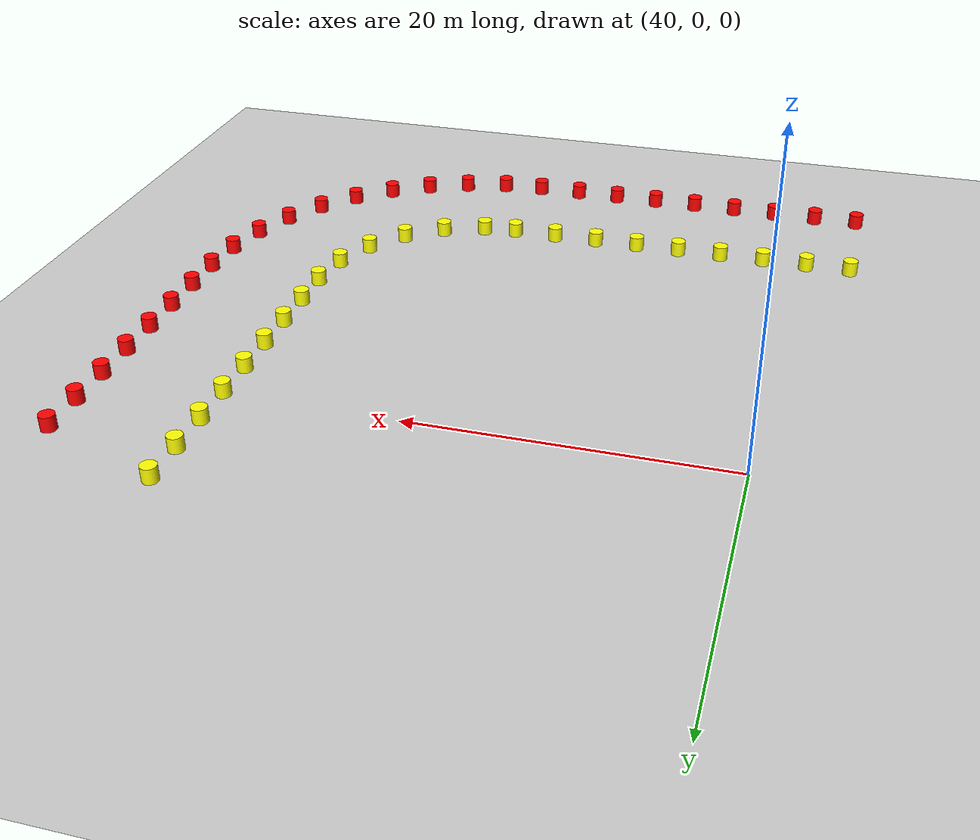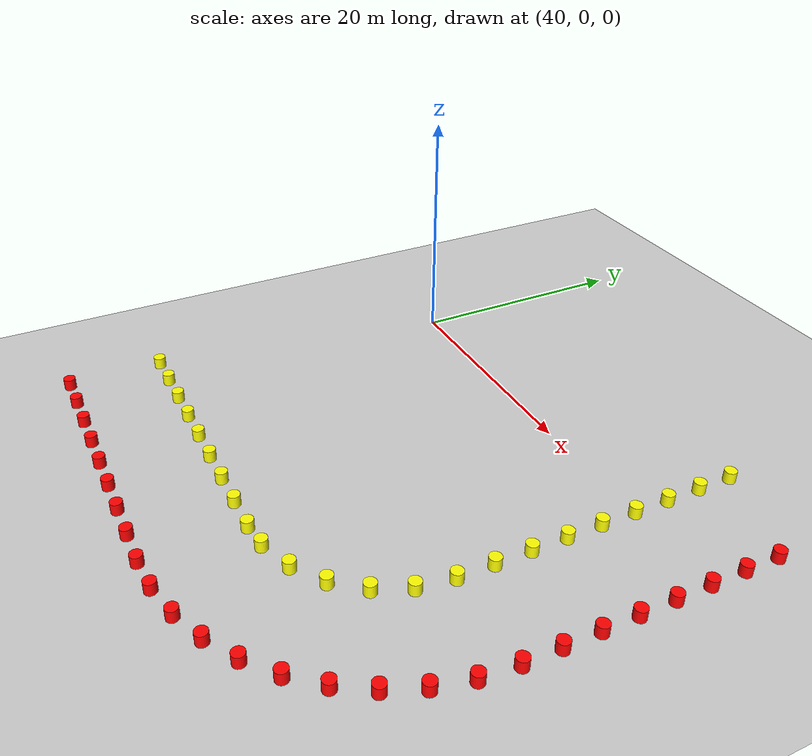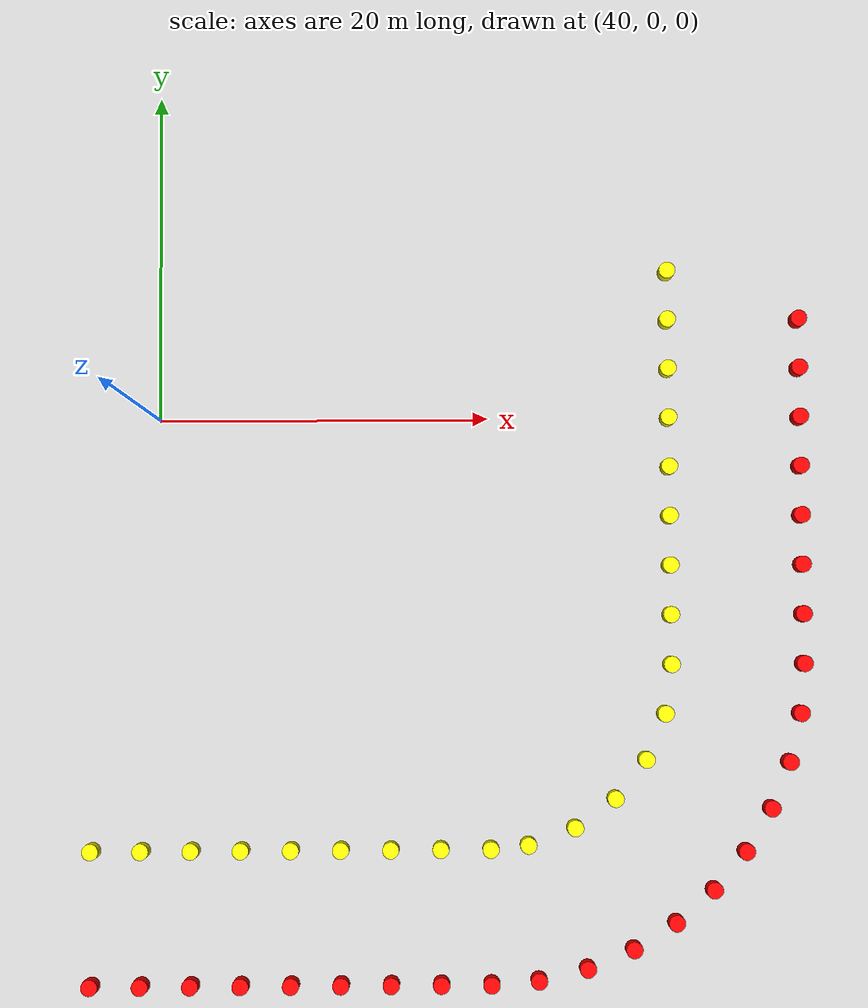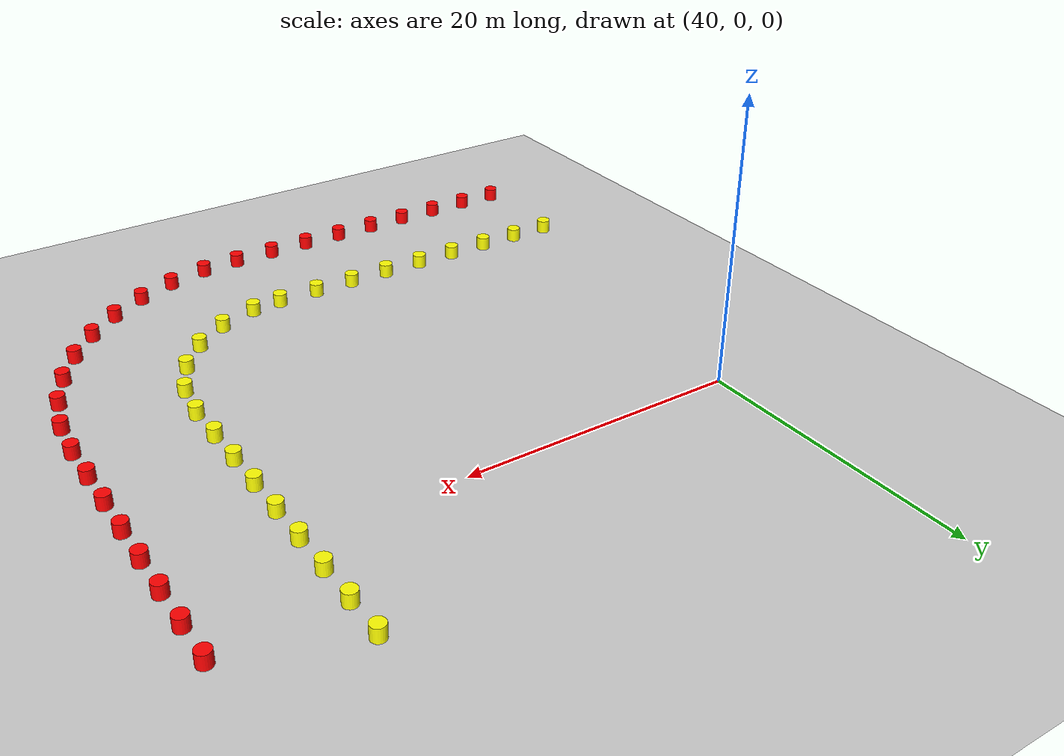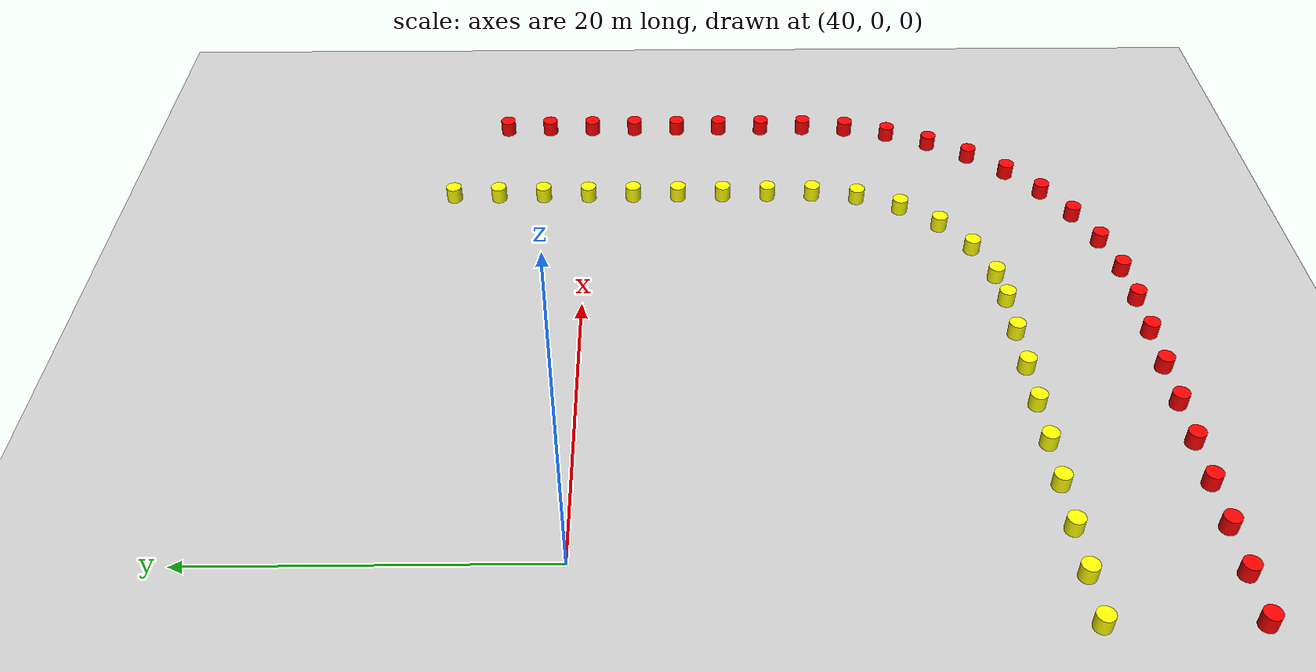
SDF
<sdf version="1.9">
 <world name="empty">
  <model name="ground_plane">
   <static>true</static>
   <link name="link">
    <collision name="collision">
     <geometry><plane><normal>0 0 1</normal><size>1000 1000</size></plane></geometry>
    </collision>
    <visual name="visual">
     <geometry><plane><normal>0 0 1</normal><size>1000 1000</size></plane></geometry>
     <material>
      <ambient>0.8 0.8 0.8 1</ambient>
      <diffuse>0.8 0.8 0.8 1</diffuse>
      <specular>0.8 0.8 0.8 1</specular>
     </material>
    </visual>
    <inertial>
     <mass>1</mass>
     <inertia><ixx>1</ixx><ixy>0</ixy><ixz>0</ixz><iyy>1</iyy><iyz>0</iyz><izz>1</izz></inertia>
    </inertial>
   </link>
  </model>
  <model name="red_cone_52">
   <pose>79.0 6.0000000000000036 0.5 0 -0 0</pose>
   <link name="cylinder_link">
    <inertial>
     <inertia>
      <ixx>0.14580000000000001</ixx>
      <ixy>0</ixy>
      <ixz>0</ixz>
      <iyy>0.14580000000000001</iyy>
      <iyz>0</iyz>
      <izz>0.125</izz>
     </inertia>
     <mass>1</mass>
    </inertial>
    <collision name="cylinder_collision">
     <geometry><cylinder><radius>0.5</radius><length>1</length></cylinder></geometry>
    </collision>
    <visual name="cylinder_visual">
     <geometry><cylinder><radius>0.5</radius><length>1</length></cylinder></geometry>
     <material><ambient>1 0 0 1</ambient><diffuse>1 0 0 1</diffuse><specular>1 1 1 1</specular></material>
    </visual>
   </link>
   <static>false</static>
  </model>
  <model name="red_cone_53">
   <pose>79.0 3.0000000000000036 0.5 0 -0 0</pose>
   <link name="cylinder_link">
    <inertial>
     <inertia>
      <ixx>0.14580000000000001</ixx>
      <ixy>0</ixy>
      <ixz>0</ixz>
      <iyy>0.14580000000000001</iyy>
      <iyz>0</iyz>
      <izz>0.125</izz>
     </inertia>
     <mass>1</mass>
    </inertial>
    <collision name="cylinder_collision">
     <geometry><cylinder><radius>0.5</radius><length>1</length></cylinder></geometry>
    </collision>
    <visual name="cylinder_visual">
     <geometry><cylinder><radius>0.5</radius><length>1</length></cylinder></geometry>
     <material><ambient>1 0 0 1</ambient><diffuse>1 0 0 1</diffuse><specular>1 1 1 1</specular></material>
    </visual>
   </link>
   <static>false</static>
  </model>
  <model name="red_cone_54">
   <pose>79.0 3.552713678800501e-15 0.5 0 -0 0</pose>
   <link name="cylinder_link">
    <inertial>
     <inertia>
      <ixx>0.14580000000000001</ixx>
      <ixy>0</ixy>
      <ixz>0</ixz>
      <iyy>0.14580000000000001</iyy>
      <iyz>0</iyz>
      <izz>0.125</izz>
     </inertia>
     <mass>1</mass>
    </inertial>
    <collision name="cylinder_collision">
     <geometry><cylinder><radius>0.5</radius><length>1</length></cylinder></geometry>
    </collision>
    <visual name="cylinder_visual">
     <geometry><cylinder><radius>0.5</radius><length>1</length></cylinder></geometry>
     <material><ambient>1 0 0 1</ambient><diffuse>1 0 0 1</diffuse><specular>1 1 1 1</specular></material>
    </visual>
   </link>
   <static>false</static>
  </model>
  <model name="red_cone_55">
   <pose>79.0 -2.9999999999999964 0.5 0 -0 0</pose>
   <link name="cylinder_link">
    <inertial>
     <inertia>
      <ixx>0.14580000000000001</ixx>
      <ixy>0</ixy>
      <ixz>0</ixz>
      <iyy>0.14580000000000001</iyy>
      <iyz>0</iyz>
      <izz>0.125</izz>
     </inertia>
     <mass>1</mass>
    </inertial>
    <collision name="cylinder_collision">
     <geometry><cylinder><radius>0.5</radius><length>1</length></cylinder></geometry>
    </collision>
    <visual name="cylinder_visual">
     <geometry><cylinder><radius>0.5</radius><length>1</length></cylinder></geometry>
     <material><ambient>1 0 0 1</ambient><diffuse>1 0 0 1</diffuse><specular>1 1 1 1</specular></material>
    </visual>
   </link>
   <static>false</static>
  </model>
  <model name="red_cone_56">
   <pose>79.0 -5.9999999999999964 0.5 0 -0 0</pose>
   <link name="cylinder_link">
    <inertial>
     <inertia>
      <ixx>0.14580000000000001</ixx>
      <ixy>0</ixy>
      <ixz>0</ixz>
      <iyy>0.14580000000000001</iyy>
      <iyz>0</iyz>
      <izz>0.125</izz>
     </inertia>
     <mass>1</mass>
    </inertial>
    <collision name="cylinder_collision">
     <geometry><cylinder><radius>0.5</radius><length>1</length></cylinder></geometry>
    </collision>
    <visual name="cylinder_visual">
     <geometry><cylinder><radius>0.5</radius><length>1</length></cylinder></geometry>
     <material><ambient>1 0 0 1</ambient><diffuse>1 0 0 1</diffuse><specular>1 1 1 1</specular></material>
    </visual>
   </link>
   <static>false</static>
  </model>
  <model name="red_cone_57">
   <pose>79.0 -8.999999999999996 0.5 0 -0 0</pose>
   <link name="cylinder_link">
    <inertial>
     <inertia>
      <ixx>0.14580000000000001</ixx>
      <ixy>0</ixy>
      <ixz>0</ixz>
      <iyy>0.14580000000000001</iyy>
      <iyz>0</iyz>
      <izz>0.125</izz>
     </inertia>
     <mass>1</mass>
    </inertial>
    <collision name="cylinder_collision">
     <geometry><cylinder><radius>0.5</radius><length>1</length></cylinder></geometry>
    </collision>
    <visual name="cylinder_visual">
     <geometry><cylinder><radius>0.5</radius><length>1</length></cylinder></geometry>
     <material><ambient>1 0 0 1</ambient><diffuse>1 0 0 1</diffuse><specular>1 1 1 1</specular></material>
    </visual>
   </link>
   <static>false</static>
  </model>
  <model name="red_cone_58">
   <pose>79.0 -11.999999999999996 0.5 0 -0 0</pose>
   <link name="cylinder_link">
    <inertial>
     <inertia>
      <ixx>0.14580000000000001</ixx>
      <ixy>0</ixy>
      <ixz>0</ixz>
      <iyy>0.14580000000000001</iyy>
      <iyz>0</iyz>
      <izz>0.125</izz>
     </inertia>
     <mass>1</mass>
    </inertial>
    <collision name="cylinder_collision">
     <geometry><cylinder><radius>0.5</radius><length>1</length></cylinder></geometry>
    </collision>
    <visual name="cylinder_visual">
     <geometry><cylinder><radius>0.5</radius><length>1</length></cylinder></geometry>
     <material><ambient>1 0 0 1</ambient><diffuse>1 0 0 1</diffuse><specular>1 1 1 1</specular></material>
    </visual>
   </link>
   <static>false</static>
  </model>
  <model name="red_cone_59">
   <pose>79.0 -14.999999999999996 0.5 0 -0 0</pose>
   <link name="cylinder_link">
    <inertial>
     <inertia>
      <ixx>0.14580000000000001</ixx>
      <ixy>0</ixy>
      <ixz>0</ixz>
      <iyy>0.14580000000000001</iyy>
      <iyz>0</iyz>
      <izz>0.125</izz>
     </inertia>
     <mass>1</mass>
    </inertial>
    <collision name="cylinder_collision">
     <geometry><cylinder><radius>0.5</radius><length>1</length></cylinder></geometry>
    </collision>
    <visual name="cylinder_visual">
     <geometry><cylinder><radius>0.5</radius><length>1</length></cylinder></geometry>
     <material><ambient>1 0 0 1</ambient><diffuse>1 0 0 1</diffuse><specular>1 1 1 1</specular></material>
    </visual>
   </link>
   <static>false</static>
  </model>
  <model name="red_cone_60">
   <pose>79.0 -14.999999999999993 0.5 0 -0 0</pose>
   <link name="cylinder_link">
    <inertial>
     <inertia>
      <ixx>0.14580000000000001</ixx>
      <ixy>0</ixy>
      <ixz>0</ixz>
      <iyy>0.14580000000000001</iyy>
      <iyz>0</iyz>
      <izz>0.125</izz>
     </inertia>
     <mass>1</mass>
    </inertial>
    <collision name="cylinder_collision">
     <geometry><cylinder><radius>0.5</radius><length>1</length></cylinder></geometry>
    </collision>
    <visual name="cylinder_visual">
     <geometry><cylinder><radius>0.5</radius><length>1</length></cylinder></geometry>
     <material><ambient>1 0 0 1</ambient><diffuse>1 0 0 1</diffuse><specular>1 1 1 1</specular></material>
    </visual>
   </link>
   <static>false</static>
  </model>
  <model name="red_cone_61">
   <pose>78.76364954024481 -17.98755015537325 0.5 0 -0 0</pose>
   <link name="cylinder_link">
    <inertial>
     <inertia>
      <ixx>0.14580000000000001</ixx>
      <ixy>0</ixy>
      <ixz>0</ixz>
      <iyy>0.14580000000000001</iyy>
      <iyz>0</iyz>
      <izz>0.125</izz>
     </inertia>
     <mass>1</mass>
    </inertial>
    <collision name="cylinder_collision">
     <geometry><cylinder><radius>0.5</radius><length>1</length></cylinder></geometry>
    </collision>
    <visual name="cylinder_visual">
     <geometry><cylinder><radius>0.5</radius><length>1</length></cylinder></geometry>
     <material><ambient>1 0 0 1</ambient><diffuse>1 0 0 1</diffuse><specular>1 1 1 1</specular></material>
    </visual>
   </link>
   <static>false</static>
  </model>
  <model name="red_cone_62">
   <pose>78.06047832306623 -20.90077306308712 0.5 0 -0 0</pose>
   <link name="cylinder_link">
    <inertial>
     <inertia>
      <ixx>0.14580000000000001</ixx>
      <ixy>0</ixy>
      <ixz>0</ixz>
      <iyy>0.14580000000000001</iyy>
      <iyz>0</iyz>
      <izz>0.125</izz>
     </inertia>
     <mass>1</mass>
    </inertial>
    <collision name="cylinder_collision">
     <geometry><cylinder><radius>0.5</radius><length>1</length></cylinder></geometry>
    </collision>
    <visual name="cylinder_visual">
     <geometry><cylinder><radius>0.5</radius><length>1</length></cylinder></geometry>
     <material><ambient>1 0 0 1</ambient><diffuse>1 0 0 1</diffuse><specular>1 1 1 1</specular></material>
    </visual>
   </link>
   <static>false</static>
  </model>
  <model name="red_cone_63">
   <pose>76.90798054219763 -23.667190662761865 0.5 0 -0 0</pose>
   <link name="cylinder_link">
    <inertial>
     <inertia>
      <ixx>0.14580000000000001</ixx>
      <ixy>0</ixy>
      <ixz>0</ixz>
      <iyy>0.14580000000000001</iyy>
      <iyz>0</iyz>
      <izz>0.125</izz>
     </inertia>
     <mass>1</mass>
    </inertial>
    <collision name="cylinder_collision">
     <geometry><cylinder><radius>0.5</radius><length>1</length></cylinder></geometry>
    </collision>
    <visual name="cylinder_visual">
     <geometry><cylinder><radius>0.5</radius><length>1</length></cylinder></geometry>
     <material><ambient>1 0 0 1</ambient><diffuse>1 0 0 1</diffuse><specular>1 1 1 1</specular></material>
    </visual>
   </link>
   <static>false</static>
  </model>
  <model name="red_cone_64">
   <pose>75.33482918504689 -26.217977262654543 0.5 0 -0 0</pose>
   <link name="cylinder_link">
    <inertial>
     <inertia>
      <ixx>0.14580000000000001</ixx>
      <ixy>0</ixy>
      <ixz>0</ixz>
      <iyy>0.14580000000000001</iyy>
      <iyz>0</iyz>
      <izz>0.125</izz>
     </inertia>
     <mass>1</mass>
    </inertial>
    <collision name="cylinder_collision">
     <geometry><cylinder><radius>0.5</radius><length>1</length></cylinder></geometry>
    </collision>
    <visual name="cylinder_visual">
     <geometry><cylinder><radius>0.5</radius><length>1</length></cylinder></geometry>
     <material><ambient>1 0 0 1</ambient><diffuse>1 0 0 1</diffuse><specular>1 1 1 1</specular></material>
    </visual>
   </link>
   <static>false</static>
  </model>
  <model name="red_cone_65">
   <pose>73.38016267756423 -28.4896718537523 0.5 0 -0 0</pose>
   <link name="cylinder_link">
    <inertial>
     <inertia>
      <ixx>0.14580000000000001</ixx>
      <ixy>0</ixy>
      <ixz>0</ixz>
      <iyy>0.14580000000000001</iyy>
      <iyz>0</iyz>
      <izz>0.125</izz>
     </inertia>
     <mass>1</mass>
    </inertial>
    <collision name="cylinder_collision">
     <geometry><cylinder><radius>0.5</radius><length>1</length></cylinder></geometry>
    </collision>
    <visual name="cylinder_visual">
     <geometry><cylinder><radius>0.5</radius><length>1</length></cylinder></geometry>
     <material><ambient>1 0 0 1</ambient><diffuse>1 0 0 1</diffuse><specular>1 1 1 1</specular></material>
    </visual>
   </link>
   <static>false</static>
  </model>
  <model name="red_cone_66">
   <pose>71.09261115950879 -30.4257569559468 0.5 0 -0 0</pose>
   <link name="cylinder_link">
    <inertial>
     <inertia>
      <ixx>0.14580000000000001</ixx>
      <ixy>0</ixy>
      <ixz>0</ixz>
      <iyy>0.14580000000000001</iyy>
      <iyz>0</iyz>
      <izz>0.125</izz>
     </inertia>
     <mass>1</mass>
    </inertial>
    <collision name="cylinder_collision">
     <geometry><cylinder><radius>0.5</radius><length>1</length></cylinder></geometry>
    </collision>
    <visual name="cylinder_visual">
     <geometry><cylinder><radius>0.5</radius><length>1</length></cylinder></geometry>
     <material><ambient>1 0 0 1</ambient><diffuse>1 0 0 1</diffuse><specular>1 1 1 1</specular></material>
    </visual>
   </link>
   <static>false</static>
  </model>
  <model name="red_cone_67">
   <pose>68.52908661540751 -31.978064716182367 0.5 0 -0 0</pose>
   <link name="cylinder_link">
    <inertial>
     <inertia>
      <ixx>0.14580000000000001</ixx>
      <ixy>0</ixy>
      <ixz>0</ixz>
      <iyy>0.14580000000000001</iyy>
      <iyz>0</iyz>
      <izz>0.125</izz>
     </inertia>
     <mass>1</mass>
    </inertial>
    <collision name="cylinder_collision">
     <geometry><cylinder><radius>0.5</radius><length>1</length></cylinder></geometry>
    </collision>
    <visual name="cylinder_visual">
     <geometry><cylinder><radius>0.5</radius><length>1</length></cylinder></geometry>
     <material><ambient>1 0 0 1</ambient><diffuse>1 0 0 1</diffuse><specular>1 1 1 1</specular></material>
    </visual>
   </link>
   <static>false</static>
  </model>
  <model name="red_cone_68">
   <pose>65.75336696153323 -33.10797527626813 0.5 0 -0 0</pose>
   <link name="cylinder_link">
    <inertial>
     <inertia>
      <ixx>0.14580000000000001</ixx>
      <ixy>0</ixy>
      <ixz>0</ixz>
      <iyy>0.14580000000000001</iyy>
      <iyz>0</iyz>
      <izz>0.125</izz>
     </inertia>
     <mass>1</mass>
    </inertial>
    <collision name="cylinder_collision">
     <geometry><cylinder><radius>0.5</radius><length>1</length></cylinder></geometry>
    </collision>
    <visual name="cylinder_visual">
     <geometry><cylinder><radius>0.5</radius><length>1</length></cylinder></geometry>
     <material><ambient>1 0 0 1</ambient><diffuse>1 0 0 1</diffuse><specular>1 1 1 1</specular></material>
    </visual>
   </link>
   <static>false</static>
  </model>
  <model name="red_cone_69">
   <pose>62.83450931539595 -33.78737759616636 0.5 0 -0 0</pose>
   <link name="cylinder_link">
    <inertial>
     <inertia>
      <ixx>0.14580000000000001</ixx>
      <ixy>0</ixy>
      <ixz>0</ixz>
      <iyy>0.14580000000000001</iyy>
      <iyz>0</iyz>
      <izz>0.125</izz>
     </inertia>
     <mass>1</mass>
    </inertial>
    <collision name="cylinder_collision">
     <geometry><cylinder><radius>0.5</radius><length>1</length></cylinder></geometry>
    </collision>
    <visual name="cylinder_visual">
     <geometry><cylinder><radius>0.5</radius><length>1</length></cylinder></geometry>
     <material><ambient>1 0 0 1</ambient><diffuse>1 0 0 1</diffuse><specular>1 1 1 1</specular></material>
    </visual>
   </link>
   <static>false</static>
  </model>
  <model name="red_cone_70">
   <pose>60.00000000000001 -34.0 0.5 0 -0 0</pose>
   <link name="cylinder_link">
    <inertial>
     <inertia>
      <ixx>0.14580000000000001</ixx>
      <ixy>0</ixy>
      <ixz>0</ixz>
      <iyy>0.14580000000000001</iyy>
      <iyz>0</iyz>
      <izz>0.125</izz>
     </inertia>
     <mass>1</mass>
    </inertial>
    <collision name="cylinder_collision">
     <geometry><cylinder><radius>0.5</radius><length>1</length></cylinder></geometry>
    </collision>
    <visual name="cylinder_visual">
     <geometry><cylinder><radius>0.5</radius><length>1</length></cylinder></geometry>
     <material><ambient>1 0 0 1</ambient><diffuse>1 0 0 1</diffuse><specular>1 1 1 1</specular></material>
    </visual>
   </link>
   <static>false</static>
  </model>
  <model name="red_cone_71">
   <pose>57.00000000000001 -34.0 0.5 0 -0 0</pose>
   <link name="cylinder_link">
    <inertial>
     <inertia>
      <ixx>0.14580000000000001</ixx>
      <ixy>0</ixy>
      <ixz>0</ixz>
      <iyy>0.14580000000000001</iyy>
      <iyz>0</iyz>
      <izz>0.125</izz>
     </inertia>
     <mass>1</mass>
    </inertial>
    <collision name="cylinder_collision">
     <geometry><cylinder><radius>0.5</radius><length>1</length></cylinder></geometry>
    </collision>
    <visual name="cylinder_visual">
     <geometry><cylinder><radius>0.5</radius><length>1</length></cylinder></geometry>
     <material><ambient>1 0 0 1</ambient><diffuse>1 0 0 1</diffuse><specular>1 1 1 1</specular></material>
    </visual>
   </link>
   <static>false</static>
  </model>
  <model name="red_cone_72">
   <pose>54.00000000000001 -34.0 0.5 0 -0 0</pose>
   <link name="cylinder_link">
    <inertial>
     <inertia>
      <ixx>0.14580000000000001</ixx>
      <ixy>0</ixy>
      <ixz>0</ixz>
      <iyy>0.14580000000000001</iyy>
      <iyz>0</iyz>
      <izz>0.125</izz>
     </inertia>
     <mass>1</mass>
    </inertial>
    <collision name="cylinder_collision">
     <geometry><cylinder><radius>0.5</radius><length>1</length></cylinder></geometry>
    </collision>
    <visual name="cylinder_visual">
     <geometry><cylinder><radius>0.5</radius><length>1</length></cylinder></geometry>
     <material><ambient>1 0 0 1</ambient><diffuse>1 0 0 1</diffuse><specular>1 1 1 1</specular></material>
    </visual>
   </link>
   <static>false</static>
  </model>
  <model name="red_cone_73">
   <pose>51.00000000000001 -34.0 0.5 0 -0 0</pose>
   <link name="cylinder_link">
    <inertial>
     <inertia>
      <ixx>0.14580000000000001</ixx>
      <ixy>0</ixy>
      <ixz>0</ixz>
      <iyy>0.14580000000000001</iyy>
      <iyz>0</iyz>
      <izz>0.125</izz>
     </inertia>
     <mass>1</mass>
    </inertial>
    <collision name="cylinder_collision">
     <geometry><cylinder><radius>0.5</radius><length>1</length></cylinder></geometry>
    </collision>
    <visual name="cylinder_visual">
     <geometry><cylinder><radius>0.5</radius><length>1</length></cylinder></geometry>
     <material><ambient>1 0 0 1</ambient><diffuse>1 0 0 1</diffuse><specular>1 1 1 1</specular></material>
    </visual>
   </link>
   <static>false</static>
  </model>
  <model name="red_cone_74">
   <pose>48.00000000000001 -34.0 0.5 0 -0 0</pose>
   <link name="cylinder_link">
    <inertial>
     <inertia>
      <ixx>0.14580000000000001</ixx>
      <ixy>0</ixy>
      <ixz>0</ixz>
      <iyy>0.14580000000000001</iyy>
      <iyz>0</iyz>
      <izz>0.125</izz>
     </inertia>
     <mass>1</mass>
    </inertial>
    <collision name="cylinder_collision">
     <geometry><cylinder><radius>0.5</radius><length>1</length></cylinder></geometry>
    </collision>
    <visual name="cylinder_visual">
     <geometry><cylinder><radius>0.5</radius><length>1</length></cylinder></geometry>
     <material><ambient>1 0 0 1</ambient><diffuse>1 0 0 1</diffuse><specular>1 1 1 1</specular></material>
    </visual>
   </link>
   <static>false</static>
  </model>
  <model name="red_cone_75">
   <pose>45.00000000000001 -34.0 0.5 0 -0 0</pose>
   <link name="cylinder_link">
    <inertial>
     <inertia>
      <ixx>0.14580000000000001</ixx>
      <ixy>0</ixy>
      <ixz>0</ixz>
      <iyy>0.14580000000000001</iyy>
      <iyz>0</iyz>
      <izz>0.125</izz>
     </inertia>
     <mass>1</mass>
    </inertial>
    <collision name="cylinder_collision">
     <geometry><cylinder><radius>0.5</radius><length>1</length></cylinder></geometry>
    </collision>
    <visual name="cylinder_visual">
     <geometry><cylinder><radius>0.5</radius><length>1</length></cylinder></geometry>
     <material><ambient>1 0 0 1</ambient><diffuse>1 0 0 1</diffuse><specular>1 1 1 1</specular></material>
    </visual>
   </link>
   <static>false</static>
  </model>
  <model name="red_cone_76">
   <pose>42.00000000000001 -34.0 0.5 0 -0 0</pose>
   <link name="cylinder_link">
    <inertial>
     <inertia>
      <ixx>0.14580000000000001</ixx>
      <ixy>0</ixy>
      <ixz>0</ixz>
      <iyy>0.14580000000000001</iyy>
      <iyz>0</iyz>
      <izz>0.125</izz>
     </inertia>
     <mass>1</mass>
    </inertial>
    <collision name="cylinder_collision">
     <geometry><cylinder><radius>0.5</radius><length>1</length></cylinder></geometry>
    </collision>
    <visual name="cylinder_visual">
     <geometry><cylinder><radius>0.5</radius><length>1</length></cylinder></geometry>
     <material><ambient>1 0 0 1</ambient><diffuse>1 0 0 1</diffuse><specular>1 1 1 1</specular></material>
    </visual>
   </link>
   <static>false</static>
  </model>
  <model name="red_cone_77">
   <pose>39.00000000000001 -34.00000000000001 0.5 0 -0 0</pose>
   <link name="cylinder_link">
    <inertial>
     <inertia>
      <ixx>0.14580000000000001</ixx>
      <ixy>0</ixy>
      <ixz>0</ixz>
      <iyy>0.14580000000000001</iyy>
      <iyz>0</iyz>
      <izz>0.125</izz>
     </inertia>
     <mass>1</mass>
    </inertial>
    <collision name="cylinder_collision">
     <geometry><cylinder><radius>0.5</radius><length>1</length></cylinder></geometry>
    </collision>
    <visual name="cylinder_visual">
     <geometry><cylinder><radius>0.5</radius><length>1</length></cylinder></geometry>
     <material><ambient>1 0 0 1</ambient><diffuse>1 0 0 1</diffuse><specular>1 1 1 1</specular></material>
    </visual>
   </link>
   <static>false</static>
  </model>
  <model name="red_cone_78">
   <pose>36.00000000000001 -34.00000000000001 0.5 0 -0 0</pose>
   <link name="cylinder_link">
    <inertial>
     <inertia>
      <ixx>0.14580000000000001</ixx>
      <ixy>0</ixy>
      <ixz>0</ixz>
      <iyy>0.14580000000000001</iyy>
      <iyz>0</iyz>
      <izz>0.125</izz>
     </inertia>
     <mass>1</mass>
    </inertial>
    <collision name="cylinder_collision">
     <geometry><cylinder><radius>0.5</radius><length>1</length></cylinder></geometry>
    </collision>
    <visual name="cylinder_visual">
     <geometry><cylinder><radius>0.5</radius><length>1</length></cylinder></geometry>
     <material><ambient>1 0 0 1</ambient><diffuse>1 0 0 1</diffuse><specular>1 1 1 1</specular></material>
    </visual>
   </link>
   <static>false</static>
  </model>
  <model name="yellow_cone_47">
   <pose>71.0 9.000000000000004 0.5 0 -0 0</pose>
   <link name="cylinder_link">
    <inertial>
     <inertia>
      <ixx>0.14580000000000001</ixx>
      <ixy>0</ixy>
      <ixz>0</ixz>
      <iyy>0.14580000000000001</iyy>
      <iyz>0</iyz>
      <izz>0.125</izz>
     </inertia>
     <mass>1</mass>
    </inertial>
    <collision name="cylinder_collision">
     <geometry><cylinder><radius>0.5</radius><length>1</length></cylinder></geometry>
    </collision>
    <visual name="cylinder_visual">
     <geometry><cylinder><radius>0.5</radius><length>1</length></cylinder></geometry>
     <material><ambient>1 1 0 1</ambient><diffuse>1 1 0 1</diffuse><specular>1 1 1 1</specular></material>
    </visual>
   </link>
   <static>false</static>
  </model>
  <model name="yellow_cone_48">
   <pose>71.0 6.0000000000000036 0.5 0 -0 0</pose>
   <link name="cylinder_link">
    <inertial>
     <inertia>
      <ixx>0.14580000000000001</ixx>
      <ixy>0</ixy>
      <ixz>0</ixz>
      <iyy>0.14580000000000001</iyy>
      <iyz>0</iyz>
      <izz>0.125</izz>
     </inertia>
     <mass>1</mass>
    </inertial>
    <collision name="cylinder_collision">
     <geometry><cylinder><radius>0.5</radius><length>1</length></cylinder></geometry>
    </collision>
    <visual name="cylinder_visual">
     <geometry><cylinder><radius>0.5</radius><length>1</length></cylinder></geometry>
     <material><ambient>1 1 0 1</ambient><diffuse>1 1 0 1</diffuse><specular>1 1 1 1</specular></material>
    </visual>
   </link>
   <static>false</static>
  </model>
  <model name="yellow_cone_49">
   <pose>71.0 3.0000000000000036 0.5 0 -0 0</pose>
   <link name="cylinder_link">
    <inertial>
     <inertia>
      <ixx>0.14580000000000001</ixx>
      <ixy>0</ixy>
      <ixz>0</ixz>
      <iyy>0.14580000000000001</iyy>
      <iyz>0</iyz>
      <izz>0.125</izz>
     </inertia>
     <mass>1</mass>
    </inertial>
    <collision name="cylinder_collision">
     <geometry><cylinder><radius>0.5</radius><length>1</length></cylinder></geometry>
    </collision>
    <visual name="cylinder_visual">
     <geometry><cylinder><radius>0.5</radius><length>1</length></cylinder></geometry>
     <material><ambient>1 1 0 1</ambient><diffuse>1 1 0 1</diffuse><specular>1 1 1 1</specular></material>
    </visual>
   </link>
   <static>false</static>
  </model>
  <model name="yellow_cone_50">
   <pose>71.0 3.552713678800501e-15 0.5 0 -0 0</pose>
   <link name="cylinder_link">
    <inertial>
     <inertia>
      <ixx>0.14580000000000001</ixx>
      <ixy>0</ixy>
      <ixz>0</ixz>
      <iyy>0.14580000000000001</iyy>
      <iyz>0</iyz>
      <izz>0.125</izz>
     </inertia>
     <mass>1</mass>
    </inertial>
    <collision name="cylinder_collision">
     <geometry><cylinder><radius>0.5</radius><length>1</length></cylinder></geometry>
    </collision>
    <visual name="cylinder_visual">
     <geometry><cylinder><radius>0.5</radius><length>1</length></cylinder></geometry>
     <material><ambient>1 1 0 1</ambient><diffuse>1 1 0 1</diffuse><specular>1 1 1 1</specular></material>
    </visual>
   </link>
   <static>false</static>
  </model>
  <model name="yellow_cone_51">
   <pose>71.0 -2.9999999999999964 0.5 0 -0 0</pose>
   <link name="cylinder_link">
    <inertial>
     <inertia>
      <ixx>0.14580000000000001</ixx>
      <ixy>0</ixy>
      <ixz>0</ixz>
      <iyy>0.14580000000000001</iyy>
      <iyz>0</iyz>
      <izz>0.125</izz>
     </inertia>
     <mass>1</mass>
    </inertial>
    <collision name="cylinder_collision">
     <geometry><cylinder><radius>0.5</radius><length>1</length></cylinder></geometry>
    </collision>
    <visual name="cylinder_visual">
     <geometry><cylinder><radius>0.5</radius><length>1</length></cylinder></geometry>
     <material><ambient>1 1 0 1</ambient><diffuse>1 1 0 1</diffuse><specular>1 1 1 1</specular></material>
    </visual>
   </link>
   <static>false</static>
  </model>
  <model name="yellow_cone_52">
   <pose>71.0 -5.9999999999999964 0.5 0 -0 0</pose>
   <link name="cylinder_link">
    <inertial>
     <inertia>
      <ixx>0.14580000000000001</ixx>
      <ixy>0</ixy>
      <ixz>0</ixz>
      <iyy>0.14580000000000001</iyy>
      <iyz>0</iyz>
      <izz>0.125</izz>
     </inertia>
     <mass>1</mass>
    </inertial>
    <collision name="cylinder_collision">
     <geometry><cylinder><radius>0.5</radius><length>1</length></cylinder></geometry>
    </collision>
    <visual name="cylinder_visual">
     <geometry><cylinder><radius>0.5</radius><length>1</length></cylinder></geometry>
     <material><ambient>1 1 0 1</ambient><diffuse>1 1 0 1</diffuse><specular>1 1 1 1</specular></material>
    </visual>
   </link>
   <static>false</static>
  </model>
  <model name="yellow_cone_53">
   <pose>71.0 -8.999999999999996 0.5 0 -0 0</pose>
   <link name="cylinder_link">
    <inertial>
     <inertia>
      <ixx>0.14580000000000001</ixx>
      <ixy>0</ixy>
      <ixz>0</ixz>
      <iyy>0.14580000000000001</iyy>
      <iyz>0</iyz>
      <izz>0.125</izz>
     </inertia>
     <mass>1</mass>
    </inertial>
    <collision name="cylinder_collision">
     <geometry><cylinder><radius>0.5</radius><length>1</length></cylinder></geometry>
    </collision>
    <visual name="cylinder_visual">
     <geometry><cylinder><radius>0.5</radius><length>1</length></cylinder></geometry>
     <material><ambient>1 1 0 1</ambient><diffuse>1 1 0 1</diffuse><specular>1 1 1 1</specular></material>
    </visual>
   </link>
   <static>false</static>
  </model>
  <model name="yellow_cone_54">
   <pose>71.0 -11.999999999999996 0.5 0 -0 0</pose>
   <link name="cylinder_link">
    <inertial>
     <inertia>
      <ixx>0.14580000000000001</ixx>
      <ixy>0</ixy>
      <ixz>0</ixz>
      <iyy>0.14580000000000001</iyy>
      <iyz>0</iyz>
      <izz>0.125</izz>
     </inertia>
     <mass>1</mass>
    </inertial>
    <collision name="cylinder_collision">
     <geometry><cylinder><radius>0.5</radius><length>1</length></cylinder></geometry>
    </collision>
    <visual name="cylinder_visual">
     <geometry><cylinder><radius>0.5</radius><length>1</length></cylinder></geometry>
     <material><ambient>1 1 0 1</ambient><diffuse>1 1 0 1</diffuse><specular>1 1 1 1</specular></material>
    </visual>
   </link>
   <static>false</static>
  </model>
  <model name="yellow_cone_55">
   <pose>71.0 -14.999999999999996 0.5 0 -0 0</pose>
   <link name="cylinder_link">
    <inertial>
     <inertia>
      <ixx>0.14580000000000001</ixx>
      <ixy>0</ixy>
      <ixz>0</ixz>
      <iyy>0.14580000000000001</iyy>
      <iyz>0</iyz>
      <izz>0.125</izz>
     </inertia>
     <mass>1</mass>
    </inertial>
    <collision name="cylinder_collision">
     <geometry><cylinder><radius>0.5</radius><length>1</length></cylinder></geometry>
    </collision>
    <visual name="cylinder_visual">
     <geometry><cylinder><radius>0.5</radius><length>1</length></cylinder></geometry>
     <material><ambient>1 1 0 1</ambient><diffuse>1 1 0 1</diffuse><specular>1 1 1 1</specular></material>
    </visual>
   </link>
   <static>false</static>
  </model>
  <model name="yellow_cone_56">
   <pose>71.0 -14.999999999999993 0.5 0 -0 0</pose>
   <link name="cylinder_link">
    <inertial>
     <inertia>
      <ixx>0.14580000000000001</ixx>
      <ixy>0</ixy>
      <ixz>0</ixz>
      <iyy>0.14580000000000001</iyy>
      <iyz>0</iyz>
      <izz>0.125</izz>
     </inertia>
     <mass>1</mass>
    </inertial>
    <collision name="cylinder_collision">
     <geometry><cylinder><radius>0.5</radius><length>1</length></cylinder></geometry>
    </collision>
    <visual name="cylinder_visual">
     <geometry><cylinder><radius>0.5</radius><length>1</length></cylinder></geometry>
     <material><ambient>1 1 0 1</ambient><diffuse>1 1 0 1</diffuse><specular>1 1 1 1</specular></material>
    </visual>
   </link>
   <static>false</static>
  </model>
  <model name="yellow_cone_57">
   <pose>70.59343849987712 -17.962947982891578 0.5 0 -0 0</pose>
   <link name="cylinder_link">
    <inertial>
     <inertia>
      <ixx>0.14580000000000001</ixx>
      <ixy>0</ixy>
      <ixz>0</ixz>
      <iyy>0.14580000000000001</iyy>
      <iyz>0</iyz>
      <izz>0.125</izz>
     </inertia>
     <mass>1</mass>
    </inertial>
    <collision name="cylinder_collision">
     <geometry><cylinder><radius>0.5</radius><length>1</length></cylinder></geometry>
    </collision>
    <visual name="cylinder_visual">
     <geometry><cylinder><radius>0.5</radius><length>1</length></cylinder></geometry>
     <material><ambient>1 1 0 1</ambient><diffuse>1 1 0 1</diffuse><specular>1 1 1 1</specular></material>
    </visual>
   </link>
   <static>false</static>
  </model>
  <model name="yellow_cone_58">
   <pose>69.40380713648705 -20.70687404274489 0.5 0 -0 0</pose>
   <link name="cylinder_link">
    <inertial>
     <inertia>
      <ixx>0.14580000000000001</ixx>
      <ixy>0</ixy>
      <ixz>0</ixz>
      <iyy>0.14580000000000001</iyy>
      <iyz>0</iyz>
      <izz>0.125</izz>
     </inertia>
     <mass>1</mass>
    </inertial>
    <collision name="cylinder_collision">
     <geometry><cylinder><radius>0.5</radius><length>1</length></cylinder></geometry>
    </collision>
    <visual name="cylinder_visual">
     <geometry><cylinder><radius>0.5</radius><length>1</length></cylinder></geometry>
     <material><ambient>1 1 0 1</ambient><diffuse>1 1 0 1</diffuse><specular>1 1 1 1</specular></material>
    </visual>
   </link>
   <static>false</static>
  </model>
  <model name="yellow_cone_59">
   <pose>67.51904378468305 -23.028946416810808 0.5 0 -0 0</pose>
   <link name="cylinder_link">
    <inertial>
     <inertia>
      <ixx>0.14580000000000001</ixx>
      <ixy>0</ixy>
      <ixz>0</ixz>
      <iyy>0.14580000000000001</iyy>
      <iyz>0</iyz>
      <izz>0.125</izz>
     </inertia>
     <mass>1</mass>
    </inertial>
    <collision name="cylinder_collision">
     <geometry><cylinder><radius>0.5</radius><length>1</length></cylinder></geometry>
    </collision>
    <visual name="cylinder_visual">
     <geometry><cylinder><radius>0.5</radius><length>1</length></cylinder></geometry>
     <material><ambient>1 1 0 1</ambient><diffuse>1 1 0 1</diffuse><specular>1 1 1 1</specular></material>
    </visual>
   </link>
   <static>false</static>
  </model>
  <model name="yellow_cone_60">
   <pose>65.078470665499 -24.757516881854016 0.5 0 -0 0</pose>
   <link name="cylinder_link">
    <inertial>
     <inertia>
      <ixx>0.14580000000000001</ixx>
      <ixy>0</ixy>
      <ixz>0</ixz>
      <iyy>0.14580000000000001</iyy>
      <iyz>0</iyz>
      <izz>0.125</izz>
     </inertia>
     <mass>1</mass>
    </inertial>
    <collision name="cylinder_collision">
     <geometry><cylinder><radius>0.5</radius><length>1</length></cylinder></geometry>
    </collision>
    <visual name="cylinder_visual">
     <geometry><cylinder><radius>0.5</radius><length>1</length></cylinder></geometry>
     <material><ambient>1 1 0 1</ambient><diffuse>1 1 0 1</diffuse><specular>1 1 1 1</specular></material>
    </visual>
   </link>
   <static>false</static>
  </model>
  <model name="yellow_cone_61">
   <pose>62.26249560957034 -25.764809037631593 0.5 0 -0 0</pose>
   <link name="cylinder_link">
    <inertial>
     <inertia>
      <ixx>0.14580000000000001</ixx>
      <ixy>0</ixy>
      <ixz>0</ixz>
      <iyy>0.14580000000000001</iyy>
      <iyz>0</iyz>
      <izz>0.125</izz>
     </inertia>
     <mass>1</mass>
    </inertial>
    <collision name="cylinder_collision">
     <geometry><cylinder><radius>0.5</radius><length>1</length></cylinder></geometry>
    </collision>
    <visual name="cylinder_visual">
     <geometry><cylinder><radius>0.5</radius><length>1</length></cylinder></geometry>
     <material><ambient>1 1 0 1</ambient><diffuse>1 1 0 1</diffuse><specular>1 1 1 1</specular></material>
    </visual>
   </link>
   <static>false</static>
  </model>
  <model name="yellow_cone_62">
   <pose>60.0 -25.999999999999996 0.5 0 -0 0</pose>
   <link name="cylinder_link">
    <inertial>
     <inertia>
      <ixx>0.14580000000000001</ixx>
      <ixy>0</ixy>
      <ixz>0</ixz>
      <iyy>0.14580000000000001</iyy>
      <iyz>0</iyz>
      <izz>0.125</izz>
     </inertia>
     <mass>1</mass>
    </inertial>
    <collision name="cylinder_collision">
     <geometry><cylinder><radius>0.5</radius><length>1</length></cylinder></geometry>
    </collision>
    <visual name="cylinder_visual">
     <geometry><cylinder><radius>0.5</radius><length>1</length></cylinder></geometry>
     <material><ambient>1 1 0 1</ambient><diffuse>1 1 0 1</diffuse><specular>1 1 1 1</specular></material>
    </visual>
   </link>
   <static>false</static>
  </model>
  <model name="yellow_cone_63">
   <pose>57.0 -25.999999999999996 0.5 0 -0 0</pose>
   <link name="cylinder_link">
    <inertial>
     <inertia>
      <ixx>0.14580000000000001</ixx>
      <ixy>0</ixy>
      <ixz>0</ixz>
      <iyy>0.14580000000000001</iyy>
      <iyz>0</iyz>
      <izz>0.125</izz>
     </inertia>
     <mass>1</mass>
    </inertial>
    <collision name="cylinder_collision">
     <geometry><cylinder><radius>0.5</radius><length>1</length></cylinder></geometry>
    </collision>
    <visual name="cylinder_visual">
     <geometry><cylinder><radius>0.5</radius><length>1</length></cylinder></geometry>
     <material><ambient>1 1 0 1</ambient><diffuse>1 1 0 1</diffuse><specular>1 1 1 1</specular></material>
    </visual>
   </link>
   <static>false</static>
  </model>
  <model name="yellow_cone_64">
   <pose>54.0 -25.999999999999996 0.5 0 -0 0</pose>
   <link name="cylinder_link">
    <inertial>
     <inertia>
      <ixx>0.14580000000000001</ixx>
      <ixy>0</ixy>
      <ixz>0</ixz>
      <iyy>0.14580000000000001</iyy>
      <iyz>0</iyz>
      <izz>0.125</izz>
     </inertia>
     <mass>1</mass>
    </inertial>
    <collision name="cylinder_collision">
     <geometry><cylinder><radius>0.5</radius><length>1</length></cylinder></geometry>
    </collision>
    <visual name="cylinder_visual">
     <geometry><cylinder><radius>0.5</radius><length>1</length></cylinder></geometry>
     <material><ambient>1 1 0 1</ambient><diffuse>1 1 0 1</diffuse><specular>1 1 1 1</specular></material>
    </visual>
   </link>
   <static>false</static>
  </model>
  <model name="yellow_cone_65">
   <pose>51.0 -25.999999999999996 0.5 0 -0 0</pose>
   <link name="cylinder_link">
    <inertial>
     <inertia>
      <ixx>0.14580000000000001</ixx>
      <ixy>0</ixy>
      <ixz>0</ixz>
      <iyy>0.14580000000000001</iyy>
      <iyz>0</iyz>
      <izz>0.125</izz>
     </inertia>
     <mass>1</mass>
    </inertial>
    <collision name="cylinder_collision">
     <geometry><cylinder><radius>0.5</radius><length>1</length></cylinder></geometry>
    </collision>
    <visual name="cylinder_visual">
     <geometry><cylinder><radius>0.5</radius><length>1</length></cylinder></geometry>
     <material><ambient>1 1 0 1</ambient><diffuse>1 1 0 1</diffuse><specular>1 1 1 1</specular></material>
    </visual>
   </link>
   <static>false</static>
  </model>
  <model name="yellow_cone_66">
   <pose>48.0 -26.0 0.5 0 -0 0</pose>
   <link name="cylinder_link">
    <inertial>
     <inertia>
      <ixx>0.14580000000000001</ixx>
      <ixy>0</ixy>
      <ixz>0</ixz>
      <iyy>0.14580000000000001</iyy>
      <iyz>0</iyz>
      <izz>0.125</izz>
     </inertia>
     <mass>1</mass>
    </inertial>
    <collision name="cylinder_collision">
     <geometry><cylinder><radius>0.5</radius><length>1</length></cylinder></geometry>
    </collision>
    <visual name="cylinder_visual">
     <geometry><cylinder><radius>0.5</radius><length>1</length></cylinder></geometry>
     <material><ambient>1 1 0 1</ambient><diffuse>1 1 0 1</diffuse><specular>1 1 1 1</specular></material>
    </visual>
   </link>
   <static>false</static>
  </model>
  <model name="yellow_cone_67">
   <pose>45.0 -26.0 0.5 0 -0 0</pose>
   <link name="cylinder_link">
    <inertial>
     <inertia>
      <ixx>0.14580000000000001</ixx>
      <ixy>0</ixy>
      <ixz>0</ixz>
      <iyy>0.14580000000000001</iyy>
      <iyz>0</iyz>
      <izz>0.125</izz>
     </inertia>
     <mass>1</mass>
    </inertial>
    <collision name="cylinder_collision">
     <geometry><cylinder><radius>0.5</radius><length>1</length></cylinder></geometry>
    </collision>
    <visual name="cylinder_visual">
     <geometry><cylinder><radius>0.5</radius><length>1</length></cylinder></geometry>
     <material><ambient>1 1 0 1</ambient><diffuse>1 1 0 1</diffuse><specular>1 1 1 1</specular></material>
    </visual>
   </link>
   <static>false</static>
  </model>
  <model name="yellow_cone_68">
   <pose>42.0 -26.0 0.5 0 -0 0</pose>
   <link name="cylinder_link">
    <inertial>
     <inertia>
      <ixx>0.14580000000000001</ixx>
      <ixy>0</ixy>
      <ixz>0</ixz>
      <iyy>0.14580000000000001</iyy>
      <iyz>0</iyz>
      <izz>0.125</izz>
     </inertia>
     <mass>1</mass>
    </inertial>
    <collision name="cylinder_collision">
     <geometry><cylinder><radius>0.5</radius><length>1</length></cylinder></geometry>
    </collision>
    <visual name="cylinder_visual">
     <geometry><cylinder><radius>0.5</radius><length>1</length></cylinder></geometry>
     <material><ambient>1 1 0 1</ambient><diffuse>1 1 0 1</diffuse><specular>1 1 1 1</specular></material>
    </visual>
   </link>
   <static>false</static>
  </model>
  <model name="yellow_cone_69">
   <pose>39.0 -26.0 0.5 0 -0 0</pose>
   <link name="cylinder_link">
    <inertial>
     <inertia>
      <ixx>0.14580000000000001</ixx>
      <ixy>0</ixy>
      <ixz>0</ixz>
      <iyy>0.14580000000000001</iyy>
      <iyz>0</iyz>
      <izz>0.125</izz>
     </inertia>
     <mass>1</mass>
    </inertial>
    <collision name="cylinder_collision">
     <geometry><cylinder><radius>0.5</radius><length>1</length></cylinder></geometry>
    </collision>
    <visual name="cylinder_visual">
     <geometry><cylinder><radius>0.5</radius><length>1</length></cylinder></geometry>
     <material><ambient>1 1 0 1</ambient><diffuse>1 1 0 1</diffuse><specular>1 1 1 1</specular></material>
    </visual>
   </link>
   <static>false</static>
  </model>
  <model name="yellow_cone_70">
   <pose>36.0 -26.0 0.5 0 -0 0</pose>
   <link name="cylinder_link">
    <inertial>
     <inertia>
      <ixx>0.14580000000000001</ixx>
      <ixy>0</ixy>
      <ixz>0</ixz>
      <iyy>0.14580000000000001</iyy>
      <iyz>0</iyz>
      <izz>0.125</izz>
     </inertia>
     <mass>1</mass>
    </inertial>
    <collision name="cylinder_collision">
     <geometry><cylinder><radius>0.5</radius><length>1</length></cylinder></geometry>
    </collision>
    <visual name="cylinder_visual">
     <geometry><cylinder><radius>0.5</radius><length>1</length></cylinder></geometry>
     <material><ambient>1 1 0 1</ambient><diffuse>1 1 0 1</diffuse><specular>1 1 1 1</specular></material>
    </visual>
   </link>
   <static>false</static>
  </model>
 </world>
</sdf>
